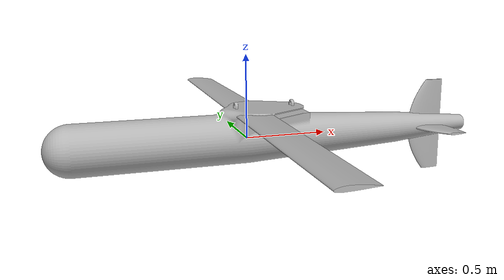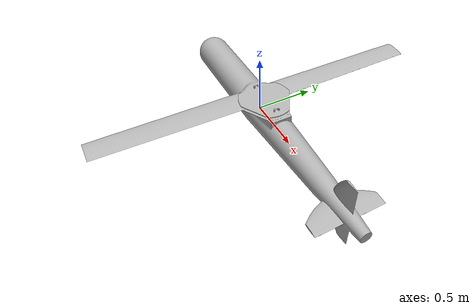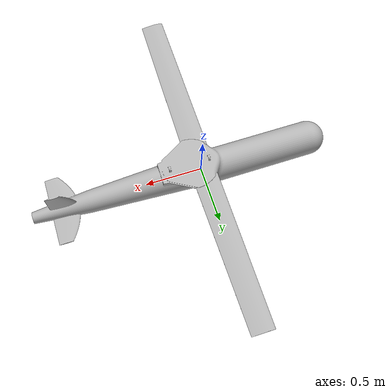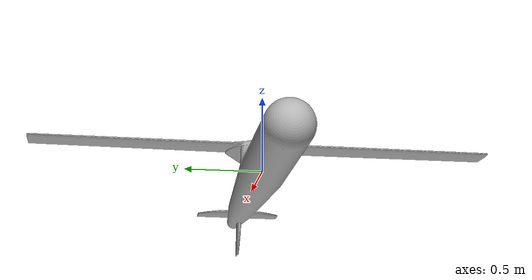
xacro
<?xml version="1.0" ?>
<robot name="uav_ver62" xmlns:xacro="http://www.ros.org/wiki/xacro">

<xacro:include filename="$(find uav_ver2)/urdf/materials.xacro" />
<xacro:include filename="$(find uav_ver2)/urdf/uav_ver62.trans" />
<xacro:include filename="$(find uav_ver2)/urdf/uav_ver62.gazebo" />
<link name="base_link">
  <!-- Estimated: ScanEagle-class UAV (wingspan ~3.6 m, fuselage 2.65 m). Fusion exported 1130 kg from dense-material default; replaced with ~15 kg hollow fuselage estimate. -->
  <inertial>
    <origin xyz="-0.050569840203091215 -3.202564255348868e-06 0.005434556406299246" rpy="0 0 0"/>
    <mass value="15.0"/>
    <inertia ixx="0.63" iyy="6.46" izz="6.46" ixy="0.0" iyz="0.0" ixz="0.0"/>
  </inertial>
  <visual>
    <origin xyz="0 0 0" rpy="0 0 0"/>
    <geometry>
      <mesh filename="package://uav_ver2/meshes/base_link.stl" scale="0.001 0.001 0.001"/>
    </geometry>
    <material name="silver"/>
  </visual>
  <collision>
    <origin xyz="0 0 0" rpy="0 0 0"/>
    <geometry>
      <mesh filename="package://uav_ver2/meshes/base_link.stl" scale="0.001 0.001 0.001"/>
    </geometry>
  </collision>
</link>

<link name="left_wing_1">
  <!-- Estimated carbon/foam composite wing (~1.5 m half-span, ~2.5 kg). COM kept from original export. -->
  <inertial>
    <origin xyz="-0.08189955557332364 -0.6634945672157346 -0.0181460003779636" rpy="0 0 0"/>
    <mass value="2.5"/>
    <inertia ixx="0.4608" iyy="0.0101" izz="0.4707" ixy="0.0" iyz="0.0" ixz="0.0"/>
  </inertial>
  <visual>
    <origin xyz="-0.075 0.06 -0.18" rpy="0 0 0"/>
    <geometry>
      <mesh filename="package://uav_ver2/meshes/left_wing_1.stl" scale="0.001 0.001 0.001"/>
    </geometry>
    <material name="silver"/>
  </visual>
  <collision>
    <origin xyz="-0.075 0.06 -0.18" rpy="0 0 0"/>
    <geometry>
      <mesh filename="package://uav_ver2/meshes/left_wing_1.stl" scale="0.001 0.001 0.001"/>
    </geometry>
  </collision>
</link>

<link name="right_wing_1">
  <!-- Mirror of left_wing_1. -->
  <inertial>
    <origin xyz="-0.08189954828725175 0.663494733381595 -0.01814624263399736" rpy="0 0 0"/>
    <mass value="2.5"/>
    <inertia ixx="0.4608" iyy="0.0101" izz="0.4707" ixy="0.0" iyz="0.0" ixz="0.0"/>
  </inertial>
  <visual>
    <origin xyz="-0.075 -0.06 -0.18" rpy="0 0 0"/>
    <geometry>
      <mesh filename="package://uav_ver2/meshes/right_wing_1.stl" scale="0.001 0.001 0.001"/>
    </geometry>
    <material name="silver"/>
  </visual>
  <collision>
    <origin xyz="-0.075 -0.06 -0.18" rpy="0 0 0"/>
    <geometry>
      <mesh filename="package://uav_ver2/meshes/right_wing_1.stl" scale="0.001 0.001 0.001"/>
    </geometry>
  </collision>
</link>

<joint name="joint_left_wing" type="continuous">
  <origin xyz="0.075 -0.06 0.18" rpy="0 0 0"/>
  <parent link="base_link"/>
  <child link="left_wing_1"/>
  <axis xyz="0.0 0.0 1.0"/>
  <dynamics damping="0.1" friction="0.01"/>
</joint>

<joint name="joint_right_wing" type="continuous">
  <origin xyz="0.075 0.06 0.18" rpy="0 0 0"/>
  <parent link="base_link"/>
  <child link="right_wing_1"/>
  <axis xyz="0.0 0.0 1.0"/>
  <dynamics damping="0.1" friction="0.01"/>
</joint>

</robot>

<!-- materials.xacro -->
<robot name="uav_ver62" xmlns:xacro="http://www.ros.org/wiki/xacro" >

<material name="silver">
  <color rgba="0.700 0.700 0.700 1.000"/>
</material>

</robot>

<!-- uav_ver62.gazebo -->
<robot name="uav_ver62" xmlns:xacro="http://www.ros.org/wiki/xacro" >

<xacro:property name="body_color" value="Gazebo/Silver" />

<gazebo>
  <plugin name="control" filename="libgazebo_ros_control.so"/>
</gazebo>
<gazebo reference="base_link">
  <material>${body_color}</material>
  <mu1>0.2</mu1>
  <mu2>0.2</mu2>
  <selfCollide>true</selfCollide>
  <gravity>true</gravity>
</gazebo>

<gazebo reference="left_wing_1">
  <material>${body_color}</material>
  <mu1>0.2</mu1>
  <mu2>0.2</mu2>
  <selfCollide>true</selfCollide>
</gazebo>

<gazebo reference="right_wing_1">
  <material>${body_color}</material>
  <mu1>0.2</mu1>
  <mu2>0.2</mu2>
  <selfCollide>true</selfCollide>
</gazebo>

</robot>
